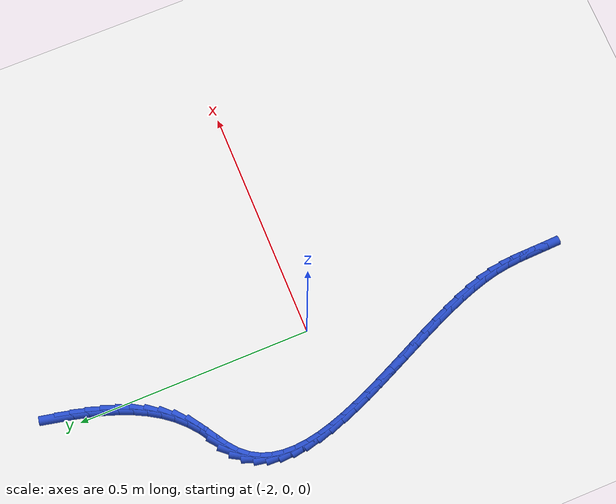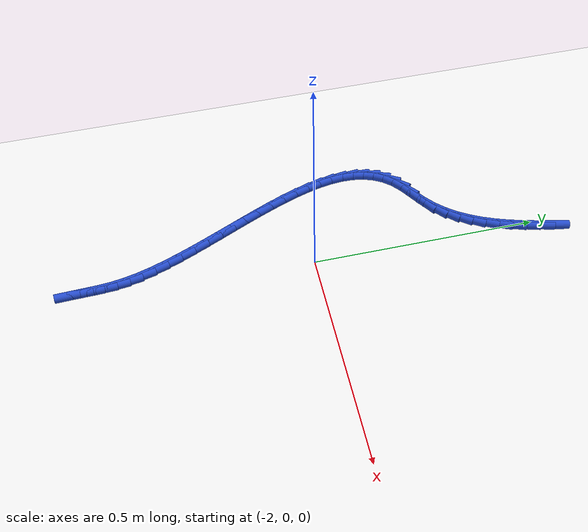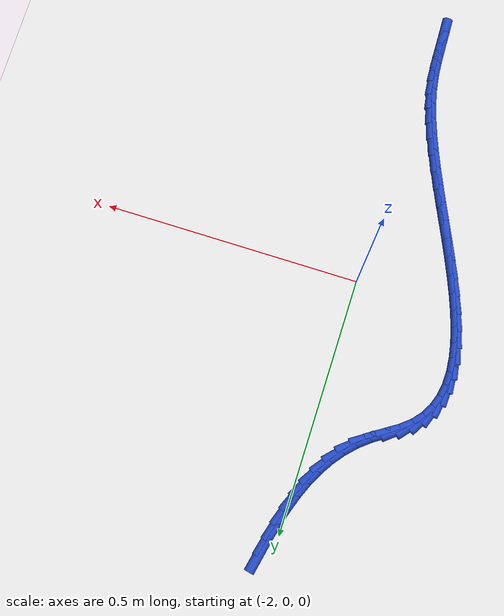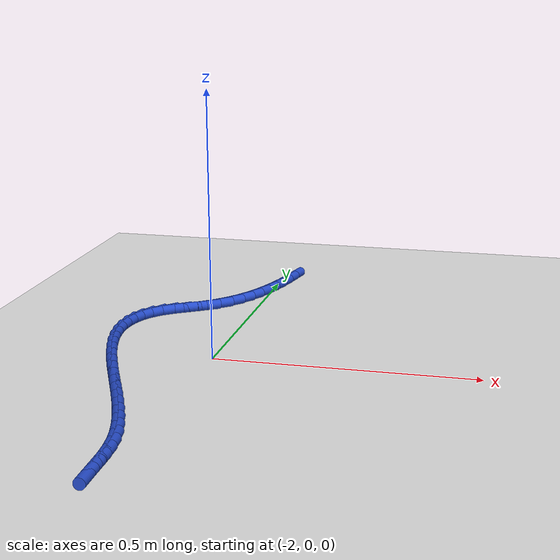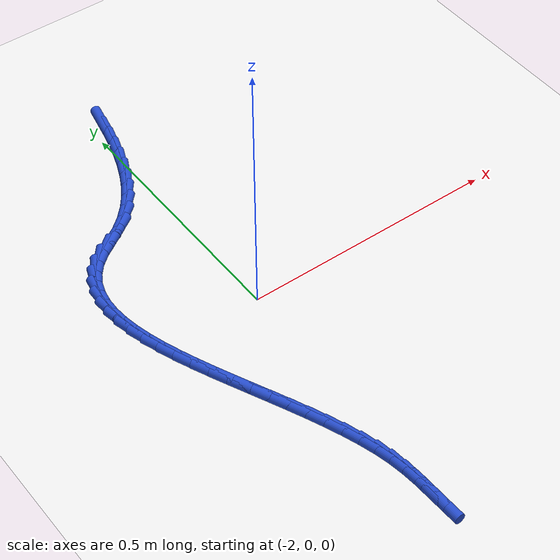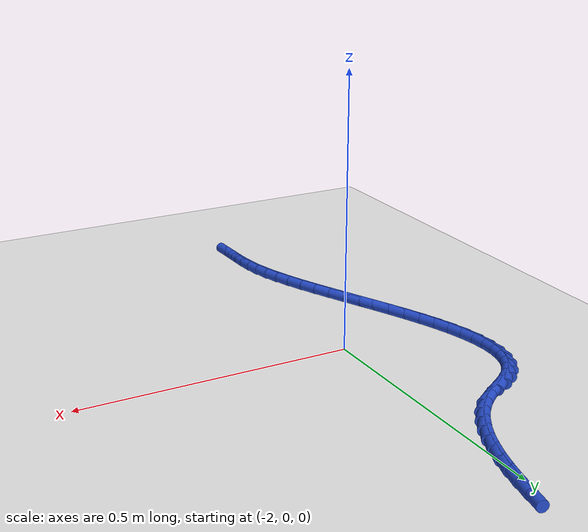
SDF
<sdf version="1.6">
 <world name="default">
  <model name="ground_plane">
   <static>1</static>
   <link name="link">
    <collision name="collision">
     <geometry><plane><normal>0 0 1</normal><size>100 100</size></plane></geometry>
     <surface><friction><ode><mu>100</mu><mu2>50</mu2></ode></friction></surface>
    </collision>
    <visual name="visual">
     <cast_shadows>0</cast_shadows>
     <geometry><plane><normal>0 0 1</normal><size>100 100</size></plane></geometry>
     <material>
      <script><uri>file://media/materials/scripts/gazebo.material</uri><name>Gazebo/WhiteGlow</name></script>
     </material>
    </visual>
   </link>
  </model>
  <model name="line">
   <link name="link_101">
    <pose>-1.9747507075205826 0.5376751120174593 0.01 0 1.57 1.3600585724252345</pose>
    <collision name="collision">
     <geometry><cylinder><radius>0.01</radius><length>0.08</length></cylinder></geometry>
    </collision>
    <visual name="visual">
     <material>
      <script><name>Gazebo/Blue</name><uri>file://media/materials/scripts/gazebo.material</uri></script>
     </material>
     <geometry><cylinder><radius>0.01</radius><length>0.08</length></cylinder></geometry>
    </visual>
   </link>
   <link name="link_102">
    <pose>-1.9814386899532344 0.5064102693454786 0.01 0 1.57 1.326838028191362</pose>
    <collision name="collision">
     <geometry><cylinder><radius>0.01</radius><length>0.08</length></cylinder></geometry>
    </collision>
    <visual name="visual">
     <material>
      <script><name>Gazebo/Blue</name><uri>file://media/materials/scripts/gazebo.material</uri></script>
     </material>
     <geometry><cylinder><radius>0.01</radius><length>0.08</length></cylinder></geometry>
    </visual>
   </link>
   <link name="link_103">
    <pose>-1.9890611673932352 0.47578759667864523 0.01 0 1.57 1.284593855450501</pose>
    <collision name="collision">
     <geometry><cylinder><radius>0.01</radius><length>0.08</length></cylinder></geometry>
    </collision>
    <visual name="visual">
     <material>
      <script><name>Gazebo/Blue</name><uri>file://media/materials/scripts/gazebo.material</uri></script>
     </material>
     <geometry><cylinder><radius>0.01</radius><length>0.08</length></cylinder></geometry>
    </visual>
   </link>
   <link name="link_104">
    <pose>-1.9978264802959322 0.4460021514794553 0.01 0 1.57 1.2324839650874222</pose>
    <collision name="collision">
     <geometry><cylinder><radius>0.01</radius><length>0.08</length></cylinder></geometry>
    </collision>
    <visual name="visual">
     <material>
      <script><name>Gazebo/Blue</name><uri>file://media/materials/scripts/gazebo.material</uri></script>
     </material>
     <geometry><cylinder><radius>0.01</radius><length>0.08</length></cylinder></geometry>
    </visual>
   </link>
   <link name="link_105">
    <pose>-2.007942969116668 0.4172489912104053 0.01 0 1.57 1.169617236751857</pose>
    <collision name="collision">
     <geometry><cylinder><radius>0.01</radius><length>0.08</length></cylinder></geometry>
    </collision>
    <visual name="visual">
     <material>
      <script><name>Gazebo/Blue</name><uri>file://media/materials/scripts/gazebo.material</uri></script>
     </material>
     <geometry><cylinder><radius>0.01</radius><length>0.08</length></cylinder></geometry>
    </visual>
   </link>
   <link name="link_106">
    <pose>-2.01961897431079 0.38972317333399137 0.01 0 1.57 1.0952026343855679</pose>
    <collision name="collision">
     <geometry><cylinder><radius>0.01</radius><length>0.08</length></cylinder></geometry>
    </collision>
    <visual name="visual">
     <material>
      <script><name>Gazebo/Blue</name><uri>file://media/materials/scripts/gazebo.material</uri></script>
     </material>
     <geometry><cylinder><radius>0.01</radius><length>0.08</length></cylinder></geometry>
    </visual>
   </link>
   <link name="link_107">
    <pose>-2.0330628363336434 0.36361975531270946 0.01 0 1.57 1.008787823529613</pose>
    <collision name="collision">
     <geometry><cylinder><radius>0.01</radius><length>0.08</length></cylinder></geometry>
    </collision>
    <visual name="visual">
     <material>
      <script><name>Gazebo/Blue</name><uri>file://media/materials/scripts/gazebo.material</uri></script>
     </material>
     <geometry><cylinder><radius>0.01</radius><length>0.08</length></cylinder></geometry>
    </visual>
   </link>
   <link name="link_108">
    <pose>-2.0484828956405727 0.3391337946090554 0.01 0 1.57 0.9105865024516471</pose>
    <collision name="collision">
     <geometry><cylinder><radius>0.01</radius><length>0.08</length></cylinder></geometry>
    </collision>
    <visual name="visual">
     <material>
      <script><name>Gazebo/Blue</name><uri>file://media/materials/scripts/gazebo.material</uri></script>
     </material>
     <geometry><cylinder><radius>0.01</radius><length>0.08</length></cylinder></geometry>
    </visual>
   </link>
   <link name="link_109">
    <pose>-2.066087492686924 0.316460348685526 0.01 0 1.57 0.8018340514815607</pose>
    <collision name="collision">
     <geometry><cylinder><radius>0.01</radius><length>0.08</length></cylinder></geometry>
    </collision>
    <visual name="visual">
     <material>
      <script><name>Gazebo/Blue</name><uri>file://media/materials/scripts/gazebo.material</uri></script>
     </material>
     <geometry><cylinder><radius>0.01</radius><length>0.08</length></cylinder></geometry>
    </visual>
   </link>
   <link name="link_110">
    <pose>-2.0860849679280427 0.2957944750046171 0.01 0 1.57 0.685024127343079</pose>
    <collision name="collision">
     <geometry><cylinder><radius>0.01</radius><length>0.08</length></cylinder></geometry>
    </collision>
    <visual name="visual">
     <material>
      <script><name>Gazebo/Blue</name><uri>file://media/materials/scripts/gazebo.material</uri></script>
     </material>
     <geometry><cylinder><radius>0.01</radius><length>0.08</length></cylinder></geometry>
    </visual>
   </link>
   <link name="link_111">
    <pose>-2.108683661819274 0.2773312310288248 0.01 0 1.57 0.5802901655863938</pose>
    <collision name="collision">
     <geometry><cylinder><radius>0.01</radius><length>0.08</length></cylinder></geometry>
    </collision>
    <visual name="visual">
     <material>
      <script><name>Gazebo/Blue</name><uri>file://media/materials/scripts/gazebo.material</uri></script>
     </material>
     <geometry><cylinder><radius>0.01</radius><length>0.08</length></cylinder></geometry>
    </visual>
   </link>
   <link name="link_112">
    <pose>-2.133621560075631 0.26098236275286096 0.01 0 1.57 0.5704968497348863</pose>
    <collision name="collision">
     <geometry><cylinder><radius>0.01</radius><length>0.08</length></cylinder></geometry>
    </collision>
    <visual name="visual">
     <material>
      <script><name>Gazebo/Blue</name><uri>file://media/materials/scripts/gazebo.material</uri></script>
     </material>
     <geometry><cylinder><radius>0.01</radius><length>0.08</length></cylinder></geometry>
    </visual>
   </link>
   <link name="link_113">
    <pose>-2.1582154224140604 0.24520122523258442 0.01 0 1.57 0.6841871722269456</pose>
    <collision name="collision">
     <geometry><cylinder><radius>0.01</radius><length>0.08</length></cylinder></geometry>
    </collision>
    <visual name="visual">
     <material>
      <script><name>Gazebo/Blue</name><uri>file://media/materials/scripts/gazebo.material</uri></script>
     </material>
     <geometry><cylinder><radius>0.01</radius><length>0.08</length></cylinder></geometry>
    </visual>
   </link>
   <link name="link_114">
    <pose>-2.1792014519418856 0.22808480448676033 0.01 0 1.57 0.8642577698841376</pose>
    <collision name="collision">
     <geometry><cylinder><radius>0.01</radius><length>0.08</length></cylinder></geometry>
    </collision>
    <visual name="visual">
     <material>
      <script><name>Gazebo/Blue</name><uri>file://media/materials/scripts/gazebo.material</uri></script>
     </material>
     <geometry><cylinder><radius>0.01</radius><length>0.08</length></cylinder></geometry>
    </visual>
   </link>
   <link name="link_115">
    <pose>-2.1955103089717203 0.20897721651668819 0.01 0 1.57 1.0533259945283004</pose>
    <collision name="collision">
     <geometry><cylinder><radius>0.01</radius><length>0.08</length></cylinder></geometry>
    </collision>
    <visual name="visual">
     <material>
      <script><name>Gazebo/Blue</name><uri>file://media/materials/scripts/gazebo.material</uri></script>
     </material>
     <geometry><cylinder><radius>0.01</radius><length>0.08</length></cylinder></geometry>
    </visual>
   </link>
   <link name="link_116">
    <pose>-2.207448232761015 0.18800433900370128 0.01 0 1.57 1.236111933284687</pose>
    <collision name="collision">
     <geometry><cylinder><radius>0.01</radius><length>0.08</length></cylinder></geometry>
    </collision>
    <visual name="visual">
     <material>
      <script><name>Gazebo/Blue</name><uri>file://media/materials/scripts/gazebo.material</uri></script>
     </material>
     <geometry><cylinder><radius>0.01</radius><length>0.08</length></cylinder></geometry>
    </visual>
   </link>
   <link name="link_117">
    <pose>-2.215342638969587 0.16530408448903766 0.01 0 1.57 1.4004440920990704</pose>
    <collision name="collision">
     <geometry><cylinder><radius>0.01</radius><length>0.08</length></cylinder></geometry>
    </collision>
    <visual name="visual">
     <material>
      <script><name>Gazebo/Blue</name><uri>file://media/materials/scripts/gazebo.material</uri></script>
     </material>
     <geometry><cylinder><radius>0.01</radius><length>0.08</length></cylinder></geometry>
    </visual>
   </link>
   <link name="link_118">
    <pose>-2.2195209432572516 0.14101436551393579 0.01 0 1.57 1.5401307663598238</pose>
    <collision name="collision">
     <geometry><cylinder><radius>0.01</radius><length>0.08</length></cylinder></geometry>
    </collision>
    <visual name="visual">
     <material>
      <script><name>Gazebo/Blue</name><uri>file://media/materials/scripts/gazebo.material</uri></script>
     </material>
     <geometry><cylinder><radius>0.01</radius><length>0.08</length></cylinder></geometry>
    </visual>
   </link>
   <link name="link_119">
    <pose>-2.2203105612838256 0.11527309461963374 0.01 0 1.57 -1.487028293339298</pose>
    <collision name="collision">
     <geometry><cylinder><radius>0.01</radius><length>0.08</length></cylinder></geometry>
    </collision>
    <visual name="visual">
     <material>
      <script><name>Gazebo/Blue</name><uri>file://media/materials/scripts/gazebo.material</uri></script>
     </material>
     <geometry><cylinder><radius>0.01</radius><length>0.08</length></cylinder></geometry>
    </visual>
   </link>
   <link name="link_120">
    <pose>-2.2180389087091266 0.08821818434737053 0.01 0 1.57 -1.3953124768640908</pose>
    <collision name="collision">
     <geometry><cylinder><radius>0.01</radius><length>0.08</length></cylinder></geometry>
    </collision>
    <visual name="visual">
     <material>
      <script><name>Gazebo/Blue</name><uri>file://media/materials/scripts/gazebo.material</uri></script>
     </material>
     <geometry><cylinder><radius>0.01</radius><length>0.08</length></cylinder></geometry>
    </visual>
   </link>
   <link name="link_121">
    <pose>-2.2130334011929693 0.05998754723838426 0.01 0 1.57 -1.3227704505914362</pose>
    <collision name="collision">
     <geometry><cylinder><radius>0.01</radius><length>0.08</length></cylinder></geometry>
    </collision>
    <visual name="visual">
     <material>
      <script><name>Gazebo/Blue</name><uri>file://media/materials/scripts/gazebo.material</uri></script>
     </material>
     <geometry><cylinder><radius>0.01</radius><length>0.08</length></cylinder></geometry>
    </visual>
   </link>
   <link name="link_122">
    <pose>-2.2056214543951715 0.03071909583391331 0.01 0 1.57 -1.265999240089232</pose>
    <collision name="collision">
     <geometry><cylinder><radius>0.01</radius><length>0.08</length></cylinder></geometry>
    </collision>
    <visual name="visual">
     <material>
      <script><name>Gazebo/Blue</name><uri>file://media/materials/scripts/gazebo.material</uri></script>
     </material>
     <geometry><cylinder><radius>0.01</radius><length>0.08</length></cylinder></geometry>
    </visual>
   </link>
   <link name="link_123">
    <pose>-2.1961304839755496 0.000550742675196083 0.01 0 1.57 -1.2221629315371783</pose>
    <collision name="collision">
     <geometry><cylinder><radius>0.01</radius><length>0.08</length></cylinder></geometry>
    </collision>
    <visual name="visual">
     <material>
      <script><name>Gazebo/Blue</name><uri>file://media/materials/scripts/gazebo.material</uri></script>
     </material>
     <geometry><cylinder><radius>0.01</radius><length>0.08</length></cylinder></geometry>
    </visual>
   </link>
   <link name="link_124">
    <pose>-2.1848879055939197 -0.030379599696529012 0.01 0 1.57 -1.1890610676937303</pose>
    <collision name="collision">
     <geometry><cylinder><radius>0.01</radius><length>0.08</length></cylinder></geometry>
    </collision>
    <visual name="visual">
     <material>
      <script><name>Gazebo/Blue</name><uri>file://media/materials/scripts/gazebo.material</uri></script>
     </material>
     <geometry><cylinder><radius>0.01</radius><length>0.08</length></cylinder></geometry>
    </visual>
   </link>
   <link name="link_125">
    <pose>-2.172221134910098 -0.06193401874002449 0.01 0 1.57 -1.1650645444992844</pose>
    <collision name="collision">
     <geometry><cylinder><radius>0.01</radius><length>0.08</length></cylinder></geometry>
    </collision>
    <visual name="visual">
     <material>
      <script><name>Gazebo/Blue</name><uri>file://media/materials/scripts/gazebo.material</uri></script>
     </material>
     <geometry><cylinder><radius>0.01</radius><length>0.08</length></cylinder></geometry>
    </visual>
   </link>
   <link name="link_126">
    <pose>-2.1584575875839027 -0.09397460191405023 0.01 0 1.57 -1.1490230270228936</pose>
    <collision name="collision">
     <geometry><cylinder><radius>0.01</radius><length>0.08</length></cylinder></geometry>
    </collision>
    <visual name="visual">
     <material>
      <script><name>Gazebo/Blue</name><uri>file://media/materials/scripts/gazebo.material</uri></script>
     </material>
     <geometry><cylinder><radius>0.01</radius><length>0.08</length></cylinder></geometry>
    </visual>
   </link>
   <link name="link_127">
    <pose>-2.1439246792751483 -0.1263634366773686 0.01 0 1.57 -1.1401834806965143</pose>
    <collision name="collision">
     <geometry><cylinder><radius>0.01</radius><length>0.08</length></cylinder></geometry>
    </collision>
    <visual name="visual">
     <material>
      <script><name>Gazebo/Blue</name><uri>file://media/materials/scripts/gazebo.material</uri></script>
     </material>
     <geometry><cylinder><radius>0.01</radius><length>0.08</length></cylinder></geometry>
    </visual>
   </link>
   <link name="link_128">
    <pose>-2.1289498256436525 -0.1589626104887413 0.01 0 1.57 -1.1381316341527494</pose>
    <collision name="collision">
     <geometry><cylinder><radius>0.01</radius><length>0.08</length></cylinder></geometry>
    </collision>
    <visual name="visual">
     <material>
      <script><name>Gazebo/Blue</name><uri>file://media/materials/scripts/gazebo.material</uri></script>
     </material>
     <geometry><cylinder><radius>0.01</radius><length>0.08</length></cylinder></geometry>
    </visual>
   </link>
   <link name="link_129">
    <pose>-2.1138604423492313 -0.19163421080692994 0.01 0 1.57 -1.1427581448088862</pose>
    <collision name="collision">
     <geometry><cylinder><radius>0.01</radius><length>0.08</length></cylinder></geometry>
    </collision>
    <visual name="visual">
     <material>
      <script><name>Gazebo/Blue</name><uri>file://media/materials/scripts/gazebo.material</uri></script>
     </material>
     <geometry><cylinder><radius>0.01</radius><length>0.08</length></cylinder></geometry>
    </visual>
   </link>
   <link name="link_130">
    <pose>-2.0989839450517014 -0.22424032509069605 0.01 0 1.57 -1.1542486537132146</pose>
    <collision name="collision">
     <geometry><cylinder><radius>0.01</radius><length>0.08</length></cylinder></geometry>
    </collision>
    <visual name="visual">
     <material>
      <script><name>Gazebo/Blue</name><uri>file://media/materials/scripts/gazebo.material</uri></script>
     </material>
     <geometry><cylinder><radius>0.01</radius><length>0.08</length></cylinder></geometry>
    </visual>
   </link>
   <link name="link_131">
    <pose>-2.0846477494108804 -0.2566430407988013 0.01 0 1.57 -1.1730970593781873</pose>
    <collision name="collision">
     <geometry><cylinder><radius>0.01</radius><length>0.08</length></cylinder></geometry>
    </collision>
    <visual name="visual">
     <material>
      <script><name>Gazebo/Blue</name><uri>file://media/materials/scripts/gazebo.material</uri></script>
     </material>
     <geometry><cylinder><radius>0.01</radius><length>0.08</length></cylinder></geometry>
    </visual>
   </link>
   <link name="link_132">
    <pose>-2.071179271086582 -0.28870444539000806 0.01 0 1.57 -1.2001419756367455</pose>
    <collision name="collision">
     <geometry><cylinder><radius>0.01</radius><length>0.08</length></cylinder></geometry>
    </collision>
    <visual name="visual">
     <material>
      <script><name>Gazebo/Blue</name><uri>file://media/materials/scripts/gazebo.material</uri></script>
     </material>
     <geometry><cylinder><radius>0.01</radius><length>0.08</length></cylinder></geometry>
    </visual>
   </link>
   <link name="link_133">
    <pose>-2.0589059257386255 -0.3202866263230765 0.01 0 1.57 -1.2366258037968187</pose>
    <collision name="collision">
     <geometry><cylinder><radius>0.01</radius><length>0.08</length></cylinder></geometry>
    </collision>
    <visual name="visual">
     <material>
      <script><name>Gazebo/Blue</name><uri>file://media/materials/scripts/gazebo.material</uri></script>
     </material>
     <geometry><cylinder><radius>0.01</radius><length>0.08</length></cylinder></geometry>
    </visual>
   </link>
   <link name="link_134">
    <pose>-2.048155129026826 -0.3512516710567686 0.01 0 1.57 -1.2842715230513513</pose>
    <collision name="collision">
     <geometry><cylinder><radius>0.01</radius><length>0.08</length></cylinder></geometry>
    </collision>
    <visual name="visual">
     <material>
      <script><name>Gazebo/Blue</name><uri>file://media/materials/scripts/gazebo.material</uri></script>
     </material>
     <geometry><cylinder><radius>0.01</radius><length>0.08</length></cylinder></geometry>
    </visual>
   </link>
   <link name="link_135">
    <pose>-2.039254296611001 -0.38146166704984635 0.01 0 1.57 -1.3453586373894972</pose>
    <collision name="collision">
     <geometry><cylinder><radius>0.01</radius><length>0.08</length></cylinder></geometry>
    </collision>
    <visual name="visual">
     <material>
      <script><name>Gazebo/Blue</name><uri>file://media/materials/scripts/gazebo.material</uri></script>
     </material>
     <geometry><cylinder><radius>0.01</radius><length>0.08</length></cylinder></geometry>
    </visual>
   </link>
   <link name="link_136">
    <pose>-2.032530844150966 -0.41077870176107123 0.01 0 1.57 -1.418890635853864</pose>
    <collision name="collision">
     <geometry><cylinder><radius>0.01</radius><length>0.08</length></cylinder></geometry>
    </collision>
    <visual name="visual">
     <material>
      <script><name>Gazebo/Blue</name><uri>file://media/materials/scripts/gazebo.material</uri></script>
     </material>
     <geometry><cylinder><radius>0.01</radius><length>0.08</length></cylinder></geometry>
    </visual>
   </link>
   <link name="link_137">
    <pose>-2.0281903069579292 -0.4391324733500916 0.01 0 1.57 -1.4832314689568102</pose>
    <collision name="collision">
     <geometry><cylinder><radius>0.01</radius><length>0.08</length></cylinder></geometry>
    </collision>
    <visual name="visual">
     <material>
      <script><name>Gazebo/Blue</name><uri>file://media/materials/scripts/gazebo.material</uri></script>
     </material>
     <geometry><cylinder><radius>0.01</radius><length>0.08</length></cylinder></geometry>
    </visual>
   </link>
   <link name="link_138">
    <pose>-2.0257587962137555 -0.46682957700801936 0.01 0 1.57 -1.5259999587156958</pose>
    <collision name="collision">
     <geometry><cylinder><radius>0.01</radius><length>0.08</length></cylinder></geometry>
    </collision>
    <visual name="visual">
     <material>
      <script><name>Gazebo/Blue</name><uri>file://media/materials/scripts/gazebo.material</uri></script>
     </material>
     <geometry><cylinder><radius>0.01</radius><length>0.08</length></cylinder></geometry>
    </visual>
   </link>
   <link name="link_139">
    <pose>-2.0245270761911867 -0.49430716194602875 0.01 0 1.57 -1.5440330823179884</pose>
    <collision name="collision">
     <geometry><cylinder><radius>0.01</radius><length>0.08</length></cylinder></geometry>
    </collision>
    <visual name="visual">
     <material>
      <script><name>Gazebo/Blue</name><uri>file://media/materials/scripts/gazebo.material</uri></script>
     </material>
     <geometry><cylinder><radius>0.01</radius><length>0.08</length></cylinder></geometry>
    </visual>
   </link>
   <link name="link_140">
    <pose>-2.0237856819451765 -0.5220025045293054 0.01 0 1.57 -1.5369284827677057</pose>
    <collision name="collision">
     <geometry><cylinder><radius>0.01</radius><length>0.08</length></cylinder></geometry>
    </collision>
    <visual name="visual">
     <material>
      <script><name>Gazebo/Blue</name><uri>file://media/materials/scripts/gazebo.material</uri></script>
     </material>
     <geometry><cylinder><radius>0.01</radius><length>0.08</length></cylinder></geometry>
    </visual>
   </link>
  </model>
 </world>
</sdf>
